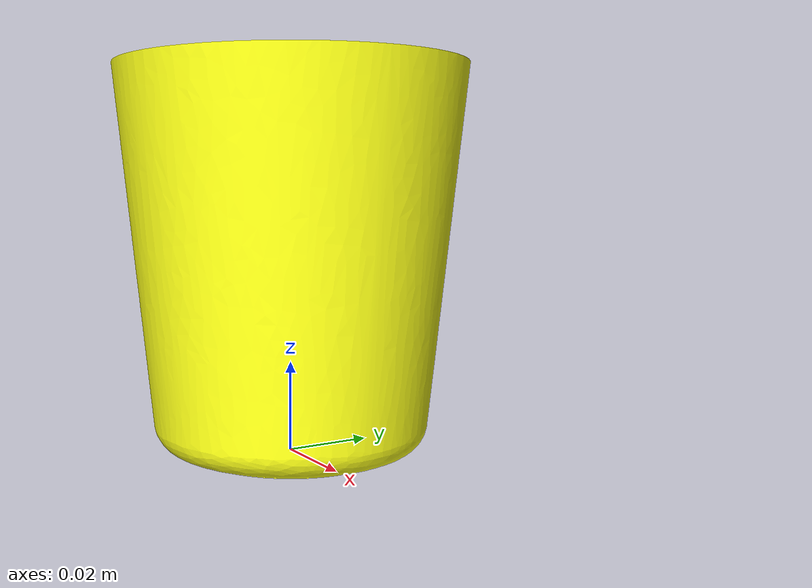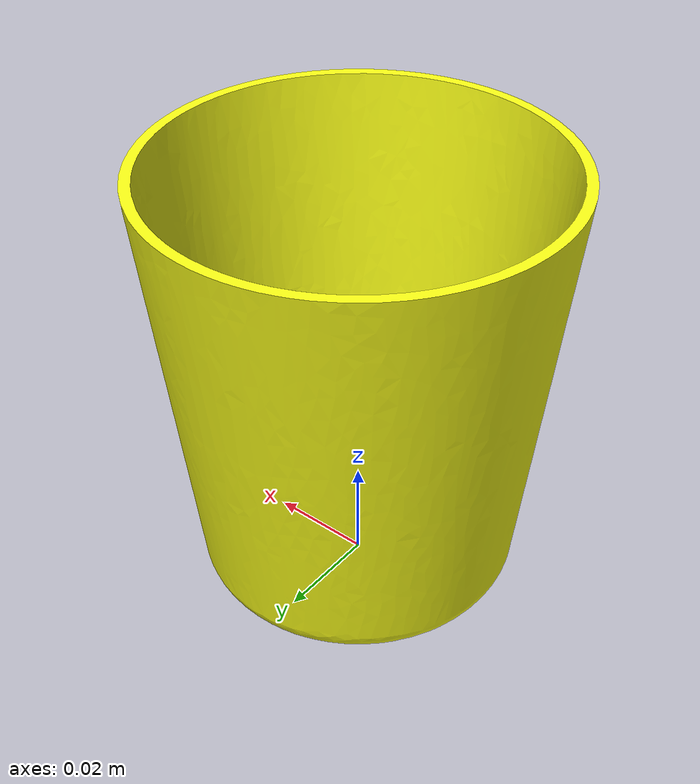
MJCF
<mujoco model="scene_bowl">
  <compiler angle="degree" meshdir="meshes" texturedir="textures"/>
  <option gravity="0 0 -9.81"/>
  <default>
    <joint armature="0.01" damping="0.5"/>
    <default class="visual">
      <geom contype="0" conaffinity="0" group="2"/>
    </default>
    <default class="collision">
      <geom rgba="0.9 0.9 0.0 0.2" group="3"/>
    </default>
  </default>
  <asset>
    <material name="M_mat0_011" rgba="0.9823 1.0000 0.0849 1.0000"/>
    <mesh name="ImagetostlMesh0010" file="ImagetostlMesh0010.obj"/>
  </asset>
  <worldbody>
    <body name="imagetostl_mesh_0_010" pos="0.000000 0.000000 0.000000" quat="0.707107 0.707107 0.000000 0.000000">
      <freejoint/>
      <geom type="mesh" mesh="ImagetostlMesh0010" class="visual" material="M_mat0_011"/>
      <geom type="mesh" mesh="ImagetostlMesh0010" class="collision" />
    </body>
  </worldbody>
</mujoco>
